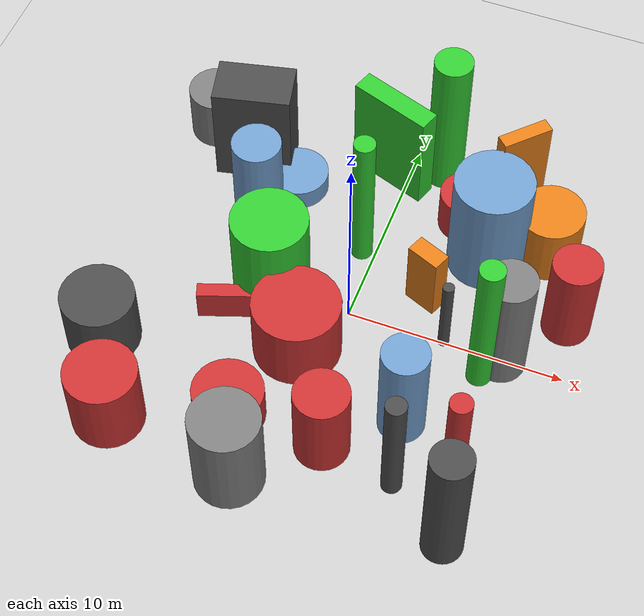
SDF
<?xml version='1.0'?>
<sdf version='1.6'>
  <world name='default'>
    <!-- Sun light -->
    <light name='sun' type='directional'>
      <cast_shadows>1</cast_shadows>
      <pose>0 0 10 0 0 0</pose>
      <diffuse>0.8 0.8 0.8 1</diffuse>
      <specular>0.2 0.2 0.2 1</specular>
      <attenuation>
        <range>1000</range>
        <constant>0.9</constant>
        <linear>0.01</linear>
        <quadratic>0.001</quadratic>
      </attenuation>
      <direction>-0.5 0.1 -0.9</direction>
    </light>

    <!-- Ground plane -->
    <model name='ground_plane'>
      <static>1</static>
      <link name='link'>
        <collision name='collision'>
          <geometry>
            <plane>
              <normal>0 0 1</normal>
              <size>100 100</size>
            </plane>
          </geometry>
          <surface>
            <contact>
              <collide_bitmask>65535</collide_bitmask>
              <ode/>
            </contact>
            <friction>
              <ode>
                <mu>100</mu>
                <mu2>50</mu2>
              </ode>
              <torsional><ode/></torsional>
            </friction>
            <bounce/>
          </surface>
          <max_contacts>10</max_contacts>
        </collision>
        <visual name='visual'>
          <cast_shadows>0</cast_shadows>
          <geometry>
            <plane>
              <normal>0 0 1</normal>
              <size>100 100</size>
            </plane>
          </geometry>
          <material>
            <script>
              <uri>file://media/materials/scripts/gazebo.material</uri>
              <n>Gazebo/Grey</n>
            </script>
          </material>
        </visual>
      </link>
    </model>

    <!-- Environment -->
    <magnetic_field>6e-06 2.3e-05 -4.2e-05</magnetic_field>
    <atmosphere type='adiabatic'/>
    <physics name='default_physics' default='0' type='ode'>
      <gravity>0 0 -9.8</gravity>
      <max_step_size>0.004</max_step_size>
      <real_time_factor>1</real_time_factor>
      <real_time_update_rate>250</real_time_update_rate>
    </physics>
    <scene>
      <ambient>0.4 0.4 0.4 1</ambient>
      <background>0.7 0.7 0.7 1</background>
      <shadows>1</shadows>
    </scene>
    <wind/>
    <spherical_coordinates>
      <surface_model>EARTH_WGS84</surface_model>
      <latitude_deg>0</latitude_deg>
      <longitude_deg>0</longitude_deg>
      <elevation>0</elevation>
      <heading_deg>0</heading_deg>
    </spherical_coordinates>

    <!-- ============ OBSTACLES (28) ============ -->
    <model name='obs_00'>
      <static>1</static>
      <link name='link'>
        <visual name='visual'>
          <geometry>
            <cylinder>
              <radius>1.8142</radius>
              <length>5.5810</length>
            </cylinder>
          </geometry>
          <material>
            <script>
              <n>Gazebo/Blue</n>
              <uri>file://media/materials/scripts/gazebo.material</uri>
            </script>
            <ambient>0.447 0.624 0.812 1</ambient>
          </material>
        </visual>
        <collision name='collision'>
          <geometry>
            <cylinder>
              <radius>1.8142</radius>
              <length>5.5810</length>
            </cylinder>
          </geometry>
          <max_contacts>10</max_contacts>
          <surface>
            <contact><ode/></contact>
            <bounce/>
            <friction>
              <ode><mu>1</mu><mu2>1</mu2></ode>
              <torsional><ode/></torsional>
            </friction>
          </surface>
        </collision>
      </link>
      <pose>4.8189 5.1899 2.7905 0 0 2.9748</pose>
    </model>

    <model name='obs_01'>
      <static>1</static>
      <link name='link'>
        <visual name='visual'>
          <geometry>
            <cylinder>
              <radius>1.5268</radius>
              <length>3.1496</length>
            </cylinder>
          </geometry>
          <material>
            <script>
              <n>Gazebo/Orange</n>
              <uri>file://media/materials/scripts/gazebo.material</uri>
            </script>
            <ambient>0.9 0.5 0.1 1</ambient>
          </material>
        </visual>
        <collision name='collision'>
          <geometry>
            <cylinder>
              <radius>1.5268</radius>
              <length>3.1496</length>
            </cylinder>
          </geometry>
          <max_contacts>10</max_contacts>
          <surface>
            <contact><ode/></contact>
            <bounce/>
            <friction>
              <ode><mu>1</mu><mu2>1</mu2></ode>
              <torsional><ode/></torsional>
            </friction>
          </surface>
        </collision>
      </link>
      <pose>7.3438 6.4203 1.5748 0 0 1.1162</pose>
    </model>

    <model name='obs_02'>
      <static>1</static>
      <link name='link'>
        <visual name='visual'>
          <geometry>
            <cylinder>
              <radius>1.2333</radius>
              <length>4.2463</length>
            </cylinder>
          </geometry>
          <material>
            <script>
              <n>Gazebo/Red</n>
              <uri>file://media/materials/scripts/gazebo.material</uri>
            </script>
            <ambient>0.8 0.2 0.2 1</ambient>
          </material>
        </visual>
        <collision name='collision'>
          <geometry>
            <cylinder>
              <radius>1.2333</radius>
              <length>4.2463</length>
            </cylinder>
          </geometry>
          <max_contacts>10</max_contacts>
          <surface>
            <contact><ode/></contact>
            <bounce/>
            <friction>
              <ode><mu>1</mu><mu2>1</mu2></ode>
              <torsional><ode/></torsional>
            </friction>
          </surface>
        </collision>
      </link>
      <pose>1.3054 -6.8206 2.1232 0 0 1.1677</pose>
    </model>

    <model name='obs_03'>
      <static>1</static>
      <link name='link'>
        <visual name='visual'>
          <geometry>
            <cylinder>
              <radius>1.7528</radius>
              <length>5.0850</length>
            </cylinder>
          </geometry>
          <material>
            <script>
              <n>Gazebo/Green</n>
              <uri>file://media/materials/scripts/gazebo.material</uri>
            </script>
            <ambient>0.2 0.8 0.2 1</ambient>
          </material>
        </visual>
        <collision name='collision'>
          <geometry>
            <cylinder>
              <radius>1.7528</radius>
              <length>5.0850</length>
            </cylinder>
          </geometry>
          <max_contacts>10</max_contacts>
          <surface>
            <contact><ode/></contact>
            <bounce/>
            <friction>
              <ode><mu>1</mu><mu2>1</mu2></ode>
              <torsional><ode/></torsional>
            </friction>
          </surface>
        </collision>
      </link>
      <pose>-3.7775 0.1359 2.5425 0 0 1.4782</pose>
    </model>

    <model name='obs_04'>
      <static>1</static>
      <link name='link'>
        <visual name='visual'>
          <geometry>
            <box>
              <size>3.6130 2.2517 5.3375</size>
            </box>
          </geometry>
          <material>
            <script>
              <n>Gazebo/DarkGrey</n>
              <uri>file://media/materials/scripts/gazebo.material</uri>
            </script>
            <ambient>0.3 0.3 0.3 1</ambient>
          </material>
        </visual>
        <collision name='collision'>
          <geometry>
            <box>
              <size>3.6130 2.2517 5.3375</size>
            </box>
          </geometry>
          <max_contacts>10</max_contacts>
          <surface>
            <contact><ode/></contact>
            <bounce/>
            <friction>
              <ode><mu>1</mu><mu2>1</mu2></ode>
              <torsional><ode/></torsional>
            </friction>
          </surface>
        </collision>
      </link>
      <pose>-7.2870 7.0259 2.6687 0 0 0.2237</pose>
    </model>

    <model name='obs_05'>
      <static>1</static>
      <link name='link'>
        <visual name='visual'>
          <geometry>
            <cylinder>
              <radius>0.9142</radius>
              <length>7.0959</length>
            </cylinder>
          </geometry>
          <material>
            <script>
              <n>Gazebo/DarkGrey</n>
              <uri>file://media/materials/scripts/gazebo.material</uri>
            </script>
            <ambient>0.3 0.3 0.3 1</ambient>
          </material>
        </visual>
        <collision name='collision'>
          <geometry>
            <cylinder>
              <radius>0.9142</radius>
              <length>7.0959</length>
            </cylinder>
          </geometry>
          <max_contacts>10</max_contacts>
          <surface>
            <contact><ode/></contact>
            <bounce/>
            <friction>
              <ode><mu>1</mu><mu2>1</mu2></ode>
              <torsional><ode/></torsional>
            </friction>
          </surface>
        </collision>
      </link>
      <pose>7.5867 -9.4210 3.5480 0 0 1.6645</pose>
    </model>

    <model name='obs_06'>
      <static>1</static>
      <link name='link'>
        <visual name='visual'>
          <geometry>
            <cylinder>
              <radius>0.5205</radius>
              <length>3.8643</length>
            </cylinder>
          </geometry>
          <material>
            <script>
              <n>Gazebo/Red</n>
              <uri>file://media/materials/scripts/gazebo.material</uri>
            </script>
            <ambient>0.8 0.2 0.2 1</ambient>
          </material>
        </visual>
        <collision name='collision'>
          <geometry>
            <cylinder>
              <radius>0.5205</radius>
              <length>3.8643</length>
            </cylinder>
          </geometry>
          <max_contacts>10</max_contacts>
          <surface>
            <contact><ode/></contact>
            <bounce/>
            <friction>
              <ode><mu>1</mu><mu2>1</mu2></ode>
              <torsional><ode/></torsional>
            </friction>
          </surface>
        </collision>
      </link>
      <pose>6.7395 -5.0102 1.9322 0 0 0.4315</pose>
    </model>

    <model name='obs_07'>
      <static>1</static>
      <link name='link'>
        <visual name='visual'>
          <geometry>
            <box>
              <size>3.9533 1.0013 5.3120</size>
            </box>
          </geometry>
          <material>
            <script>
              <n>Gazebo/Green</n>
              <uri>file://media/materials/scripts/gazebo.material</uri>
            </script>
            <ambient>0.2 0.8 0.2 1</ambient>
          </material>
        </visual>
        <collision name='collision'>
          <geometry>
            <box>
              <size>3.9533 1.0013 5.3120</size>
            </box>
          </geometry>
          <max_contacts>10</max_contacts>
          <surface>
            <contact><ode/></contact>
            <bounce/>
            <friction>
              <ode><mu>1</mu><mu2>1</mu2></ode>
              <torsional><ode/></torsional>
            </friction>
          </surface>
        </collision>
      </link>
      <pose>-0.8710 8.3606 2.6560 0 0 2.8050</pose>
    </model>

    <model name='obs_08'>
      <static>1</static>
      <link name='link'>
        <visual name='visual'>
          <geometry>
            <cylinder>
              <radius>1.0520</radius>
              <length>5.4172</length>
            </cylinder>
          </geometry>
          <material>
            <script>
              <n>Gazebo/Blue</n>
              <uri>file://media/materials/scripts/gazebo.material</uri>
            </script>
            <ambient>0.447 0.624 0.812 1</ambient>
          </material>
        </visual>
        <collision name='collision'>
          <geometry>
            <cylinder>
              <radius>1.0520</radius>
              <length>5.4172</length>
            </cylinder>
          </geometry>
          <max_contacts>10</max_contacts>
          <surface>
            <contact><ode/></contact>
            <bounce/>
            <friction>
              <ode><mu>1</mu><mu2>1</mu2></ode>
              <torsional><ode/></torsional>
            </friction>
          </surface>
        </collision>
      </link>
      <pose>4.0927 -4.5205 2.7086 0 0 2.4471</pose>
    </model>

    <model name='obs_09'>
      <static>1</static>
      <link name='link'>
        <visual name='visual'>
          <geometry>
            <cylinder>
              <radius>0.2573</radius>
              <length>4.1644</length>
            </cylinder>
          </geometry>
          <material>
            <script>
              <n>Gazebo/DarkGrey</n>
              <uri>file://media/materials/scripts/gazebo.material</uri>
            </script>
            <ambient>0.3 0.3 0.3 1</ambient>
          </material>
        </visual>
        <collision name='collision'>
          <geometry>
            <cylinder>
              <radius>0.2573</radius>
              <length>4.1644</length>
            </cylinder>
          </geometry>
          <max_contacts>10</max_contacts>
          <surface>
            <contact><ode/></contact>
            <bounce/>
            <friction>
              <ode><mu>1</mu><mu2>1</mu2></ode>
              <torsional><ode/></torsional>
            </friction>
          </surface>
        </collision>
      </link>
      <pose>4.4701 0.1025 2.0822 0 0 0.9846</pose>
    </model>

    <model name='obs_10'>
      <static>1</static>
      <link name='link'>
        <visual name='visual'>
          <geometry>
            <cylinder>
              <radius>0.4619</radius>
              <length>6.3514</length>
            </cylinder>
          </geometry>
          <material>
            <script>
              <n>Gazebo/DarkGrey</n>
              <uri>file://media/materials/scripts/gazebo.material</uri>
            </script>
            <ambient>0.3 0.3 0.3 1</ambient>
          </material>
        </visual>
        <collision name='collision'>
          <geometry>
            <cylinder>
              <radius>0.4619</radius>
              <length>6.3514</length>
            </cylinder>
          </geometry>
          <max_contacts>10</max_contacts>
          <surface>
            <contact><ode/></contact>
            <bounce/>
            <friction>
              <ode><mu>1</mu><mu2>1</mu2></ode>
              <torsional><ode/></torsional>
            </friction>
          </surface>
        </collision>
      </link>
      <pose>4.7082 -7.5225 3.1757 0 0 2.3914</pose>
    </model>

    <model name='obs_11'>
      <static>1</static>
      <link name='link'>
        <visual name='visual'>
          <geometry>
            <cylinder>
              <radius>1.5925</radius>
              <length>1.9058</length>
            </cylinder>
          </geometry>
          <material>
            <script>
              <n>Gazebo/Red</n>
              <uri>file://media/materials/scripts/gazebo.material</uri>
            </script>
            <ambient>0.8 0.2 0.2 1</ambient>
          </material>
        </visual>
        <collision name='collision'>
          <geometry>
            <cylinder>
              <radius>1.5925</radius>
              <length>1.9058</length>
            </cylinder>
          </geometry>
          <max_contacts>10</max_contacts>
          <surface>
            <contact><ode/></contact>
            <bounce/>
            <friction>
              <ode><mu>1</mu><mu2>1</mu2></ode>
              <torsional><ode/></torsional>
            </friction>
          </surface>
        </collision>
      </link>
      <pose>-3.0048 -6.7297 0.9529 0 0 2.4668</pose>
    </model>

    <model name='obs_12'>
      <static>1</static>
      <link name='link'>
        <visual name='visual'>
          <geometry>
            <cylinder>
              <radius>0.8963</radius>
              <length>7.7573</length>
            </cylinder>
          </geometry>
          <material>
            <script>
              <n>Gazebo/Green</n>
              <uri>file://media/materials/scripts/gazebo.material</uri>
            </script>
            <ambient>0.2 0.8 0.2 1</ambient>
          </material>
        </visual>
        <collision name='collision'>
          <geometry>
            <cylinder>
              <radius>0.8963</radius>
              <length>7.7573</length>
            </cylinder>
          </geometry>
          <max_contacts>10</max_contacts>
          <surface>
            <contact><ode/></contact>
            <bounce/>
            <friction>
              <ode><mu>1</mu><mu2>1</mu2></ode>
              <torsional><ode/></torsional>
            </friction>
          </surface>
        </collision>
      </link>
      <pose>1.4452 9.2984 3.8786 0 0 1.9902</pose>
    </model>

    <model name='obs_13'>
      <static>1</static>
      <link name='link'>
        <visual name='visual'>
          <geometry>
            <cylinder>
              <radius>1.1375</radius>
              <length>6.1146</length>
            </cylinder>
          </geometry>
          <material>
            <script>
              <n>Gazebo/Grey</n>
              <uri>file://media/materials/scripts/gazebo.material</uri>
            </script>
            <ambient>0.5 0.5 0.5 1</ambient>
          </material>
        </visual>
        <collision name='collision'>
          <geometry>
            <cylinder>
              <radius>1.1375</radius>
              <length>6.1146</length>
            </cylinder>
          </geometry>
          <max_contacts>10</max_contacts>
          <surface>
            <contact><ode/></contact>
            <bounce/>
            <friction>
              <ode><mu>1</mu><mu2>1</mu2></ode>
              <torsional><ode/></torsional>
            </friction>
          </surface>
        </collision>
      </link>
      <pose>7.1422 0 3.0573 0 0 0.0147</pose>
    </model>

    <model name='obs_14'>
      <static>1</static>
      <link name='link'>
        <visual name='visual'>
          <geometry>
            <cylinder>
              <radius>1.5502</radius>
              <length>4.7172</length>
            </cylinder>
          </geometry>
          <material>
            <script>
              <n>Gazebo/Grey</n>
              <uri>file://media/materials/scripts/gazebo.material</uri>
            </script>
            <ambient>0.5 0.5 0.5 1</ambient>
          </material>
        </visual>
        <collision name='collision'>
          <geometry>
            <cylinder>
              <radius>1.5502</radius>
              <length>4.7172</length>
            </cylinder>
          </geometry>
          <max_contacts>10</max_contacts>
          <surface>
            <contact><ode/></contact>
            <bounce/>
            <friction>
              <ode><mu>1</mu><mu2>1</mu2></ode>
              <torsional><ode/></torsional>
            </friction>
          </surface>
        </collision>
      </link>
      <pose>-1.8099 -9.5990 2.3586 0 0 2.8023</pose>
    </model>

    <model name='obs_15'>
      <static>1</static>
      <link name='link'>
        <visual name='visual'>
          <geometry>
            <cylinder>
              <radius>1.3094</radius>
              <length>2.7418</length>
            </cylinder>
          </geometry>
          <material>
            <script>
              <n>Gazebo/Grey</n>
              <uri>file://media/materials/scripts/gazebo.material</uri>
            </script>
            <ambient>0.5 0.5 0.5 1</ambient>
          </material>
        </visual>
        <collision name='collision'>
          <geometry>
            <cylinder>
              <radius>1.3094</radius>
              <length>2.7418</length>
            </cylinder>
          </geometry>
          <max_contacts>10</max_contacts>
          <surface>
            <contact><ode/></contact>
            <bounce/>
            <friction>
              <ode><mu>1</mu><mu2>1</mu2></ode>
              <torsional><ode/></torsional>
            </friction>
          </surface>
        </collision>
      </link>
      <pose>-9.8220 8.2303 1.3709 0 0 2.1261</pose>
    </model>

    <model name='obs_16'>
      <static>1</static>
      <link name='link'>
        <visual name='visual'>
          <geometry>
            <box>
              <size>1.5923 0.8595 3.5167</size>
            </box>
          </geometry>
          <material>
            <script>
              <n>Gazebo/Orange</n>
              <uri>file://media/materials/scripts/gazebo.material</uri>
            </script>
            <ambient>0.9 0.5 0.1 1</ambient>
          </material>
        </visual>
        <collision name='collision'>
          <geometry>
            <box>
              <size>1.5923 0.8595 3.5167</size>
            </box>
          </geometry>
          <max_contacts>10</max_contacts>
          <surface>
            <contact><ode/></contact>
            <bounce/>
            <friction>
              <ode><mu>1</mu><mu2>1</mu2></ode>
              <torsional><ode/></torsional>
            </friction>
          </surface>
        </collision>
      </link>
      <pose>2.9474 2.0228 1.7583 0 0 2.7551</pose>
    </model>

    <model name='obs_17'>
      <static>1</static>
      <link name='link'>
        <visual name='visual'>
          <geometry>
            <cylinder>
              <radius>1.6741</radius>
              <length>3.0874</length>
            </cylinder>
          </geometry>
          <material>
            <script>
              <n>Gazebo/DarkGrey</n>
              <uri>file://media/materials/scripts/gazebo.material</uri>
            </script>
            <ambient>0.3 0.3 0.3 1</ambient>
          </material>
        </visual>
        <collision name='collision'>
          <geometry>
            <cylinder>
              <radius>1.6741</radius>
              <length>3.0874</length>
            </cylinder>
          </geometry>
          <max_contacts>10</max_contacts>
          <surface>
            <contact><ode/></contact>
            <bounce/>
            <friction>
              <ode><mu>1</mu><mu2>1</mu2></ode>
              <torsional><ode/></torsional>
            </friction>
          </surface>
        </collision>
      </link>
      <pose>-9.8307 -4.9522 1.5437 0 0 0.5247</pose>
    </model>

    <model name='obs_18'>
      <static>1</static>
      <link name='link'>
        <visual name='visual'>
          <geometry>
            <cylinder>
              <radius>1.1125</radius>
              <length>4.6688</length>
            </cylinder>
          </geometry>
          <material>
            <script>
              <n>Gazebo/Red</n>
              <uri>file://media/materials/scripts/gazebo.material</uri>
            </script>
            <ambient>0.8 0.2 0.2 1</ambient>
          </material>
        </visual>
        <collision name='collision'>
          <geometry>
            <cylinder>
              <radius>1.1125</radius>
              <length>4.6688</length>
            </cylinder>
          </geometry>
          <max_contacts>10</max_contacts>
          <surface>
            <contact><ode/></contact>
            <bounce/>
            <friction>
              <ode><mu>1</mu><mu2>1</mu2></ode>
              <torsional><ode/></torsional>
            </friction>
          </surface>
        </collision>
      </link>
      <pose>9.3405 2.8548 2.3344 0 0 1.4323</pose>
    </model>

    <model name='obs_19'>
      <static>1</static>
      <link name='link'>
        <visual name='visual'>
          <geometry>
            <cylinder>
              <radius>1.9916</radius>
              <length>3.3991</length>
            </cylinder>
          </geometry>
          <material>
            <script>
              <n>Gazebo/Red</n>
              <uri>file://media/materials/scripts/gazebo.material</uri>
            </script>
            <ambient>0.8 0.2 0.2 1</ambient>
          </material>
        </visual>
        <collision name='collision'>
          <geometry>
            <cylinder>
              <radius>1.9916</radius>
              <length>3.3991</length>
            </cylinder>
          </geometry>
          <max_contacts>10</max_contacts>
          <surface>
            <contact><ode/></contact>
            <bounce/>
            <friction>
              <ode><mu>1</mu><mu2>1</mu2></ode>
              <torsional><ode/></torsional>
            </friction>
          </surface>
        </collision>
      </link>
      <pose>-1.5239 -2.4705 1.6996 0 0 2.7897</pose>
    </model>

    <model name='obs_20'>
      <static>1</static>
      <link name='link'>
        <visual name='visual'>
          <geometry>
            <cylinder>
              <radius>0.4986</radius>
              <length>7.6366</length>
            </cylinder>
          </geometry>
          <material>
            <script>
              <n>Gazebo/Green</n>
              <uri>file://media/materials/scripts/gazebo.material</uri>
            </script>
            <ambient>0.2 0.8 0.2 1</ambient>
          </material>
        </visual>
        <collision name='collision'>
          <geometry>
            <cylinder>
              <radius>0.4986</radius>
              <length>7.6366</length>
            </cylinder>
          </geometry>
          <max_contacts>10</max_contacts>
          <surface>
            <contact><ode/></contact>
            <bounce/>
            <friction>
              <ode><mu>1</mu><mu2>1</mu2></ode>
              <torsional><ode/></torsional>
            </friction>
          </surface>
        </collision>
      </link>
      <pose>-0.6660 3.5439 3.8183 0 0 1.1286</pose>
    </model>

    <model name='obs_21'>
      <static>1</static>
      <link name='link'>
        <visual name='visual'>
          <geometry>
            <cylinder>
              <radius>0.5650</radius>
              <length>7.8942</length>
            </cylinder>
          </geometry>
          <material>
            <script>
              <n>Gazebo/Green</n>
              <uri>file://media/materials/scripts/gazebo.material</uri>
            </script>
            <ambient>0.2 0.8 0.2 1</ambient>
          </material>
        </visual>
        <collision name='collision'>
          <geometry>
            <cylinder>
              <radius>0.5650</radius>
              <length>7.8942</length>
            </cylinder>
          </geometry>
          <max_contacts>10</max_contacts>
          <surface>
            <contact><ode/></contact>
            <bounce/>
            <friction>
              <ode><mu>1</mu><mu2>1</mu2></ode>
              <torsional><ode/></torsional>
            </friction>
          </surface>
        </collision>
      </link>
      <pose>6.4862 -1.0569 3.9471 0 0 0.0601</pose>
    </model>

    <model name='obs_22'>
      <static>1</static>
      <link name='link'>
        <visual name='visual'>
          <geometry>
            <cylinder>
              <radius>1.2409</radius>
              <length>2.1829</length>
            </cylinder>
          </geometry>
          <material>
            <script>
              <n>Gazebo/Red</n>
              <uri>file://media/materials/scripts/gazebo.material</uri>
            </script>
            <ambient>0.8 0.2 0.2 1</ambient>
          </material>
        </visual>
        <collision name='collision'>
          <geometry>
            <cylinder>
              <radius>1.2409</radius>
              <length>2.1829</length>
            </cylinder>
          </geometry>
          <max_contacts>10</max_contacts>
          <surface>
            <contact><ode/></contact>
            <bounce/>
            <friction>
              <ode><mu>1</mu><mu2>1</mu2></ode>
              <torsional><ode/></torsional>
            </friction>
          </surface>
        </collision>
      </link>
      <pose>3.2471 6.8657 1.0914 0 0 2.3062</pose>
    </model>

    <model name='obs_23'>
      <static>1</static>
      <link name='link'>
        <visual name='visual'>
          <geometry>
            <cylinder>
              <radius>1.6154</radius>
              <length>3.6263</length>
            </cylinder>
          </geometry>
          <material>
            <script>
              <n>Gazebo/Red</n>
              <uri>file://media/materials/scripts/gazebo.material</uri>
            </script>
            <ambient>0.8 0.2 0.2 1</ambient>
          </material>
        </visual>
        <collision name='collision'>
          <geometry>
            <cylinder>
              <radius>1.6154</radius>
              <length>3.6263</length>
            </cylinder>
          </geometry>
          <max_contacts>10</max_contacts>
          <surface>
            <contact><ode/></contact>
            <bounce/>
            <friction>
              <ode><mu>1</mu><mu2>1</mu2></ode>
              <torsional><ode/></torsional>
            </friction>
          </surface>
        </collision>
      </link>
      <pose>-7.8379 -8.7233 1.8132 0 0 2.2340</pose>
    </model>

    <model name='obs_24'>
      <static>1</static>
      <link name='link'>
        <visual name='visual'>
          <geometry>
            <box>
              <size>2.3716 0.6701 5.9734</size>
            </box>
          </geometry>
          <material>
            <script>
              <n>Gazebo/Orange</n>
              <uri>file://media/materials/scripts/gazebo.material</uri>
            </script>
            <ambient>0.9 0.5 0.1 1</ambient>
          </material>
        </visual>
        <collision name='collision'>
          <geometry>
            <box>
              <size>2.3716 0.6701 5.9734</size>
            </box>
          </geometry>
          <max_contacts>10</max_contacts>
          <surface>
            <contact><ode/></contact>
            <bounce/>
            <friction>
              <ode><mu>1</mu><mu2>1</mu2></ode>
              <torsional><ode/></torsional>
            </friction>
          </surface>
        </collision>
      </link>
      <pose>5.3095 7.9937 2.9867 0 0 0.8036</pose>
    </model>

    <model name='obs_25'>
      <static>1</static>
      <link name='link'>
        <visual name='visual'>
          <geometry>
            <box>
              <size>3.4264 0.6688 1.5789</size>
            </box>
          </geometry>
          <material>
            <script>
              <n>Gazebo/Red</n>
              <uri>file://media/materials/scripts/gazebo.material</uri>
            </script>
            <ambient>0.8 0.2 0.2 1</ambient>
          </material>
        </visual>
        <collision name='collision'>
          <geometry>
            <box>
              <size>3.4264 0.6688 1.5789</size>
            </box>
          </geometry>
          <max_contacts>10</max_contacts>
          <surface>
            <contact><ode/></contact>
            <bounce/>
            <friction>
              <ode><mu>1</mu><mu2>1</mu2></ode>
              <torsional><ode/></torsional>
            </friction>
          </surface>
        </collision>
      </link>
      <pose>-4.8115 -1.6287 0.7895 0 0 0.3396</pose>
    </model>

    <model name='obs_26'>
      <static>1</static>
      <link name='link'>
        <visual name='visual'>
          <geometry>
            <cylinder>
              <radius>1.1625</radius>
              <length>4.3208</length>
            </cylinder>
          </geometry>
          <material>
            <script>
              <n>Gazebo/Blue</n>
              <uri>file://media/materials/scripts/gazebo.material</uri>
            </script>
            <ambient>0.447 0.624 0.812 1</ambient>
          </material>
        </visual>
        <collision name='collision'>
          <geometry>
            <cylinder>
              <radius>1.1625</radius>
              <length>4.3208</length>
            </cylinder>
          </geometry>
          <max_contacts>10</max_contacts>
          <surface>
            <contact><ode/></contact>
            <bounce/>
            <friction>
              <ode><mu>1</mu><mu2>1</mu2></ode>
              <torsional><ode/></torsional>
            </friction>
          </surface>
        </collision>
      </link>
      <pose>-6.2017 4.5310 2.1604 0 0 1.1946</pose>
    </model>

    <model name='obs_27'>
      <static>1</static>
      <link name='link'>
        <visual name='visual'>
          <geometry>
            <cylinder>
              <radius>1.4186</radius>
              <length>1.0651</length>
            </cylinder>
          </geometry>
          <material>
            <script>
              <n>Gazebo/Blue</n>
              <uri>file://media/materials/scripts/gazebo.material</uri>
            </script>
            <ambient>0.447 0.624 0.812 1</ambient>
          </material>
        </visual>
        <collision name='collision'>
          <geometry>
            <cylinder>
              <radius>1.4186</radius>
              <length>1.0651</length>
            </cylinder>
          </geometry>
          <max_contacts>10</max_contacts>
          <surface>
            <contact><ode/></contact>
            <bounce/>
            <friction>
              <ode><mu>1</mu><mu2>1</mu2></ode>
              <torsional><ode/></torsional>
            </friction>
          </surface>
        </collision>
      </link>
      <pose>-4.8270 6.1669 0.5326 0 0 0.6456</pose>
    </model>

    <!-- GUI camera -->
    <gui fullscreen='0'>
      <camera name='user_camera'>
        <pose>-15 0 18 0 0.85 0.15</pose>
        <view_controller>orbit</view_controller>
        <projection_type>perspective</projection_type>
      </camera>
    </gui>
  </world>
</sdf>
